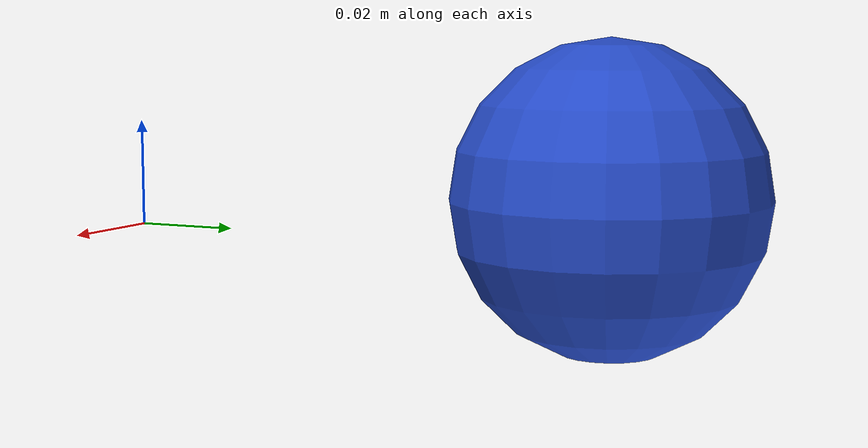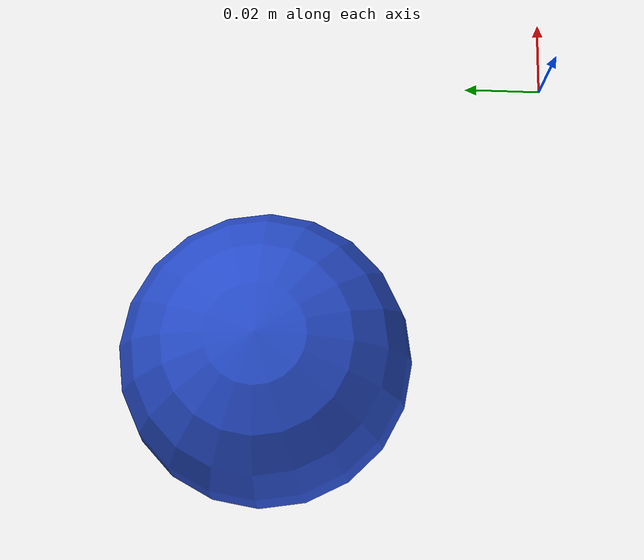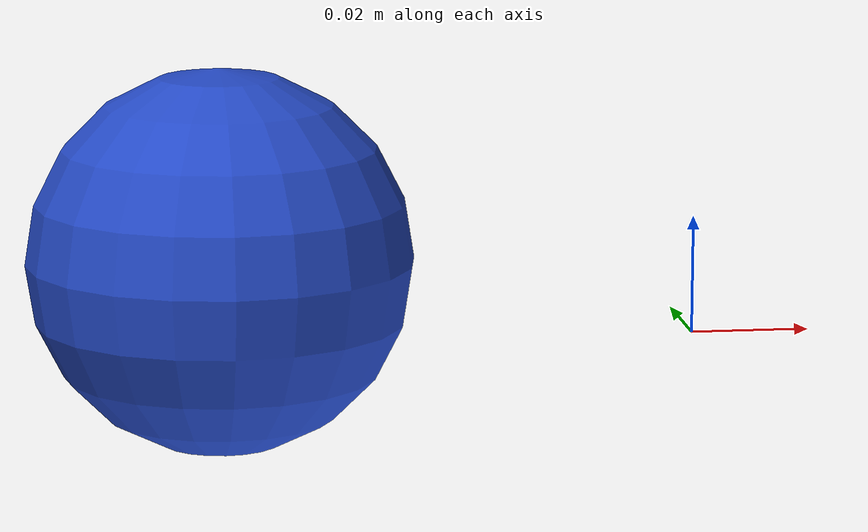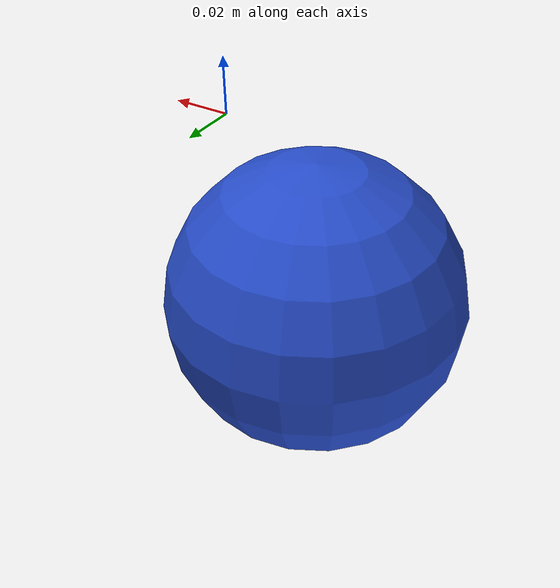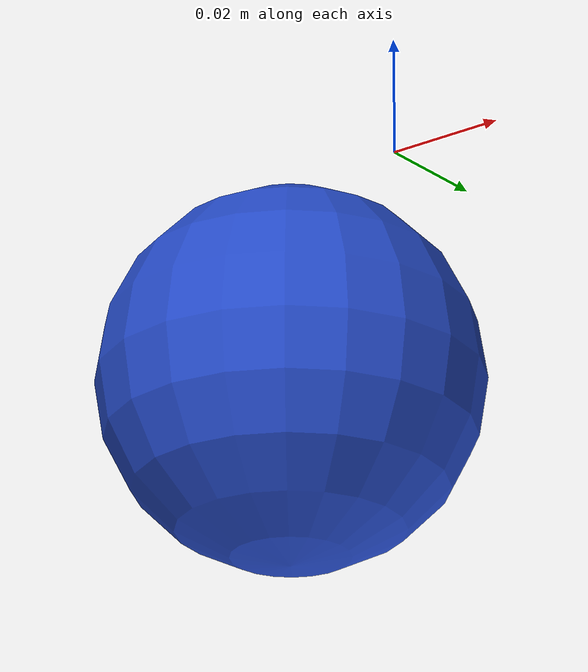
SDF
<sdf version="1.6">
  <model name='BALL'>
      <link name='link'>
        <inertial>
          <mass>0.16</mass>
          <inertia>
            <ixx>0.1</ixx>
            <ixy>0</ixy>
            <ixz>0</ixz>
            <iyy>0.1</iyy>
            <iyz>0</iyz>
            <izz>0.1</izz>
          </inertia>
          <pose frame=''>0 0 0 0 -0 0</pose>
        </inertial>
        <self_collide>0</self_collide>
        <kinematic>0</kinematic>
        <gravity>1</gravity>
        <visual name='visual'>
          <geometry>
            <sphere>
              <radius>0.036</radius>
            </sphere>
          </geometry>
          <material>
            <script>
              <name>Gazebo/Blue</name>
              <uri>file://media/materials/scripts/gazebo.material</uri>
            </script>
            <ambient>0 0.1 0.3 1</ambient>
            <diffuse>0 0.2 0.7 1</diffuse>
            <specular>0.01 0.01 0.01 1</specular>
            <emissive>0 0 0 1</emissive>
            <shader type='vertex'>
              <normal_map>__default__</normal_map>
            </shader>
          </material>
          <pose frame=''>0 0 0 0 -0 0</pose>
          <cast_shadows>1</cast_shadows>
          <transparency>0</transparency>
        </visual>
        <collision name='collision'>
          <laser_retro>0</laser_retro>
          <max_contacts>10</max_contacts>
          <pose frame=''>0 0 0 0 -0 0</pose>
          <geometry>
            <sphere>
              <radius>0.036</radius>
            </sphere>
          </geometry>
          <surface>
            <friction>
              <ode>
                <mu>0.0</mu>
                <mu2>0.0</mu2>
                <fdir1>0 0 0</fdir1>
                <slip1>1</slip1>
                <slip2>1</slip2>
              </ode>
              <torsional>
                <coefficient>1</coefficient>
                <patch_radius>0</patch_radius>
                <surface_radius>0</surface_radius>
                <use_patch_radius>1</use_patch_radius>
                <ode>
                  <slip>0</slip>
                </ode>
              </torsional>
            </friction>
            <bounce>
              <restitution_coefficient>1.0</restitution_coefficient>
              <threshold>0.01</threshold>
            </bounce>
            <contact>
              <collide_without_contact>0</collide_without_contact>
              <collide_without_contact_bitmask>1</collide_without_contact_bitmask>
              <collide_bitmask>1</collide_bitmask>
              <ode>
                <soft_cfm>0</soft_cfm>
                <soft_erp>0.2</soft_erp>
                <kp>1e+13</kp>
                <kd>1</kd>
                <max_vel>10.0</max_vel>
                <min_depth>0</min_depth>
              </ode>
              <bullet>
                <split_impulse>1</split_impulse>
                <split_impulse_penetration_threshold>-0.01</split_impulse_penetration_threshold>
                <soft_cfm>0</soft_cfm>
                <soft_erp>0.2</soft_erp>
                <kp>1e+13</kp>
                <kd>1</kd>
              </bullet>
            </contact>
          </surface>
        </collision>
      </link>
      <static>0</static>
      <allow_auto_disable>1</allow_auto_disable>
      <pose frame=''>-0.074975 0.069399 0 0 -0 0</pose>
    </model>
</sdf>
